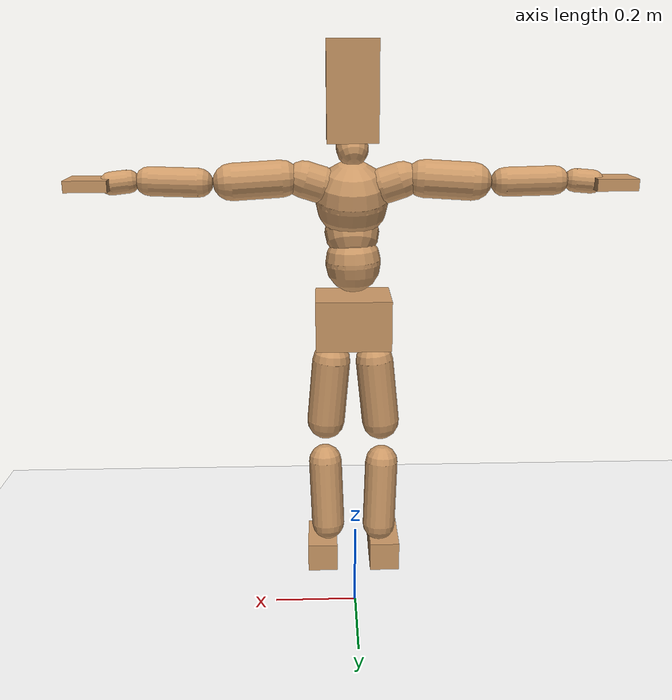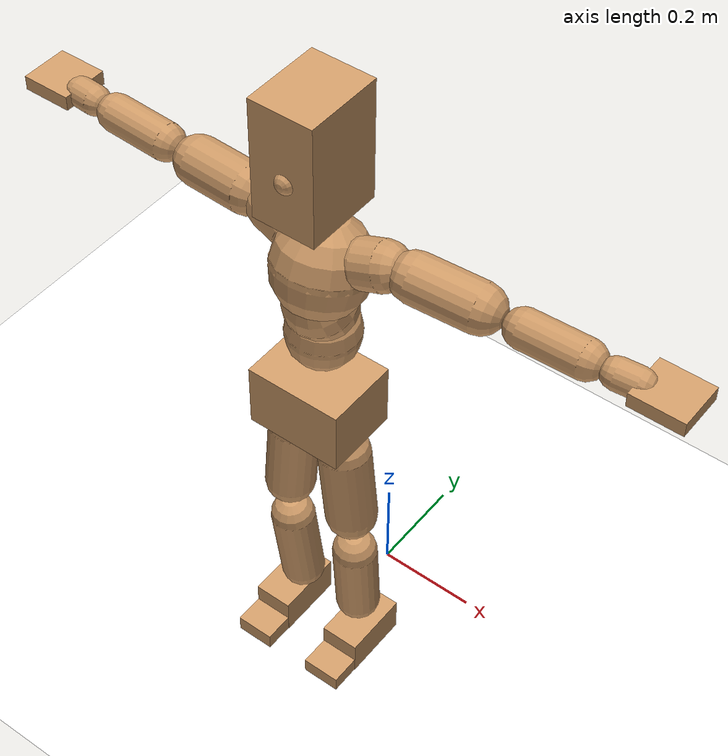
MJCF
<mujoco model="humanoid">
  <option integrator="implicitfast" />

  <visual>
    <global offwidth="1280" offheight="960" />
    <headlight active="1" ambient="0.34 0.34 0.34" diffuse="0.5 0.5 0.5" />
  </visual>

  <default>
    <joint damping="2" stiffness="2" armature="0.01" limited="true" solimplimit="0 .99 .01" />
    <geom condim="1" friction="0.7 0.005 0.0001" solimp=".99 .99 .003" solref="0.015 1" margin="0.001" rgba="0.8 0.6 .4 1" />
    <default class="smplcontact">
      <geom condim="3" friction="1. 0.005 0.0001" solref="0.015 1" solimp="0.98 0.98 0.001" priority="1" />
    </default>
    <default class="stiff_medium">
      <joint stiffness="10" />
    </default>
    <default class="stiff_medium_higher">
      <joint stiffness="50" />
    </default>
    <default class="stiff_high">
      <joint stiffness="100" />
    </default>
  </default>

  <asset>
    <texture type="skybox" builtin="gradient" rgb1="0.99 0.99 0.99" rgb2="0.608 0.828 0.892" width="100" />
    <texture builtin="flat" height="1278" mark="cross" markrgb="1 1 1" name="texgeom" random="0.01" rgb1="0.8 0.6 0.4" rgb2="0.8 0.6 0.4" type="cube" width="127" />
    <texture name="texplane" type="2d" builtin="checker" markrgb="1 1 1" rgb1="0.756 0.772 0.76" rgb2="0.6 0.6 0.6" width="100" height="100" />
    <material name="MatPlane" reflectance="0.5" texture="texplane" texrepeat="1 1" texuniform="true" />
    <material name="geom" texture="texgeom" texuniform="true" />
  </asset>

  <worldbody>
    <light name="tracking_light" pos="0 0 7" dir="0 0 -1" directional="true" cutoff="100" exponent="1" diffuse="1 1 1" specular="0.1 0.1 0.1" mode="trackcom" />
    <camera name="back" pos="0 3 2.4" xyaxes="-1 0 0 0 -1 2" mode="trackcom" />
    <camera name="side" pos="-3 0 2.4" xyaxes="0 -1 0 1 0 2" mode="trackcom" />
    <camera name="front_side" pos="-2.8 -2.8 0.8" xyaxes="0.5 -0.5 0 0.1 0.1 1" mode="trackcom" />
    <geom condim="3" name="floor" pos="0 0 0" rgba="1 1 1 1" size="100 100 .2" type="plane" material="MatPlane" />
    <body name="Pelvis" pos="-0.0018 -0.2233 0.69081" euler="90 0 0">
      <site name="Pelvis" size="0.01" />
      <freejoint name="Pelvis" />
      <geom type="box" pos="-0.0000 -0.0121 -0.0055" size="0.0948939 0.0640911 0.0736781" quat="1.0000 0.0000 0.0000 0.0000" density="3165.830099" name="Pelvis" />
      <body name="L_Hip" pos="0.0510283 -0.0671077 -0.0049927">
        <joint name="L_Hip_x" type="hinge" pos="0 0 0" axis="1 0 0" stiffness="10" range="-160.0 22.92" class="stiff_medium" damping="15" />
        <joint name="L_Hip_y" type="hinge" pos="0 0 0" axis="0 1 0" stiffness="10" range="-70.0 70.0" class="stiff_medium" damping="10" />
        <joint name="L_Hip_z" type="hinge" pos="0 0 0" axis="0 0 1" stiffness="10" range="-28.65 90.0" class="stiff_medium" damping="10" />
        <geom type="capsule" density="2040.816327" fromto="0.00506612 -0.0550665 -0.000660798 0.0201176 -0.220413 -0.00264319" size="0.0490996" name="L_Hip" />
        <body name="L_Knee" pos="0.0251838 -0.275479 -0.00330399">
          <joint name="L_Knee_x" type="hinge" pos="0 0 0" axis="1 0 0" range="-5.16 171.89" damping="8" />
          <joint name="L_Knee_y" type="hinge" pos="0 0 0" axis="0 1 0" range="-4.58 6.88" damping="8" />
          <joint name="L_Knee_z" type="hinge" pos="0 0 0" axis="0 0 1" range="-6.88 4.58" damping="8" />
          <geom type="capsule" density="1234.567901" fromto="-0.00198239 -0.0584439 -0.00638772 -0.008003 -0.233776 -0.0256977" size="0.0431916" name="L_Knee" />
          <body name="L_Ankle" pos="-0.0099854 -0.29222 -0.0320854">
            <joint name="L_Ankle_x" type="hinge" pos="0 0 0" axis="1 0 0" range="-45.84 45.84" class="stiff_medium" damping="6" />
            <joint name="L_Ankle_y" type="hinge" pos="0 0 0" axis="0 1 0" range="-74.48 22.92" class="stiff_medium" damping="3" />
            <joint name="L_Ankle_z" type="hinge" pos="0 0 0" axis="0 0 1" range="-4.58 4.58" class="stiff_medium" damping="6" />
            <geom type="box" pos="0.0171073 -0.0175479 0.0177681" size="0.0385611 0.0370442 0.0678612" quat="1.0000 0.0000 0.0000 0.0000" density="449.071558" name="L_Ankle" class="smplcontact" />
            <body name="L_Toe" pos="0.0193834 -0.0409695 0.0875925">
              <joint name="L_Toe_x" type="hinge" pos="0 0 0" axis="1 0 0" range="-91.67 22.92" />
              <joint name="L_Toe_y" type="hinge" pos="0 0 0" axis="0 1 0" range="-4.58 4.58" />
              <joint name="L_Toe_z" type="hinge" pos="0 0 0" axis="0 0 1" range="-4.58 4.58" />
              <geom type="box" pos="-0.00220266 0.00403821 0.0182087" size="0.0381619 0.0159673 0.039599" quat="1.0000 0.0000 0.0000 0.0000" density="423.206892" name="L_Toe" class="smplcontact" />
            </body>
          </body>
        </body>
      </body>
      <body name="R_Hip" pos="-0.0497067 -0.0664469 -0.00315715">
        <joint name="R_Hip_x" type="hinge" pos="0 0 0" axis="1 0 0" stiffness="10" range="-160.0 22.92" class="stiff_medium" damping="15" />
        <joint name="R_Hip_y" type="hinge" pos="0 0 0" axis="0 1 0" stiffness="10" range="-70.0 70.0" class="stiff_medium" damping="10" />
        <joint name="R_Hip_z" type="hinge" pos="0 0 0" axis="0 0 1" stiffness="10" range="-90.0 28.65" class="stiff_medium" damping="10" />
        <geom type="capsule" density="2040.816327" fromto="-0.0056535 -0.0561678 -0.0013216 -0.0224671 -0.224745 -0.00521296" size="0.048381" name="R_Hip" />
        <body name="R_Knee" pos="-0.0281206 -0.280913 -0.00653456">
          <joint name="R_Knee_x" type="hinge" pos="0 0 0" axis="1 0 0" range="-5.16 171.89" damping="8" />
          <joint name="R_Knee_y" type="hinge" pos="0 0 0" axis="0 1 0" range="-6.88 4.58" damping="8" />
          <joint name="R_Knee_z" type="hinge" pos="0 0 0" axis="0 0 1" range="-4.58 6.88" damping="8" />
          <geom type="capsule" density="1234.567901" fromto="0.0023495 -0.0585174 -0.00624087 0.00925117 -0.233996 -0.0248166" size="0.0431916" name="R_Knee" />
          <body name="R_Ankle" pos="0.0116007 -0.292513 -0.0310575">
            <joint name="R_Ankle_x" type="hinge" pos="0 0 0" axis="1 0 0" range="-45.84 45.84" class="stiff_medium" damping="6" />
            <joint name="R_Ankle_y" type="hinge" pos="0 0 0" axis="0 1 0" range="-22.92 74.48" class="stiff_medium" damping="3" />
            <joint name="R_Ankle_z" type="hinge" pos="0 0 0" axis="0 0 1" range="-4.58 4.58" class="stiff_medium" damping="6" />
            <geom type="box" pos="-0.0155655 -0.0127754 0.018796" size="0.0385611 0.0381619 0.0690587" quat="1.0000 0.0000 0.0000 0.0000" density="434.700981" name="R_Ankle" class="smplcontact" />
            <body name="R_Toe" pos="-0.0186492 -0.035316 0.0905294">
              <joint name="R_Toe_x" type="hinge" pos="0 0 0" axis="1 0 0" range="-91.67 22.92" />
              <joint name="R_Toe_y" type="hinge" pos="0 0 0" axis="0 1 0" range="-4.58 4.58" />
              <joint name="R_Toe_z" type="hinge" pos="0 0 0" axis="0 0 1" range="-4.58 4.58" />
              <geom type="box" pos="0.00308372 0.00330399 0.0166668" size="0.0382418 0.0172447 0.0393595" quat="1.0000 0.0000 0.0000 0.0000" density="407.384095" name="R_Toe" class="smplcontact" />
            </body>
          </body>
        </body>
      </body>
      <body name="Torso" pos="-0.00197269 0.0860093 -0.0210683">
        <joint name="Torso_x" type="hinge" pos="0 0 0" axis="1 0 0" range="-25.78 57.3" class="stiff_medium" damping="15" />
        <joint name="Torso_y" type="hinge" pos="0 0 0" axis="0 1 0" range="-57.3 57.3" class="stiff_high" damping="20" />
        <joint name="Torso_z" type="hinge" pos="0 0 0" axis="0 0 1" range="-34.38 34.38" class="stiff_high" damping="20" />
        <geom type="capsule" density="2040.816327" fromto="0.00197269 0.0479758 0.000394538 0.00236723 0.0586284 0.000473446" size="0.0682632" name="Torso" />
        <body name="Spine" pos="0.00433992 0.106683 0.000867984">
          <joint name="Spine_x" type="hinge" pos="0 0 0" axis="1 0 0" stiffness="10" range="-25.78 57.3" class="stiff_medium" damping="15" />
          <joint name="Spine_y" type="hinge" pos="0 0 0" axis="0 1 0" stiffness="10" range="-57.3 57.3" class="stiff_high" damping="8" />
          <joint name="Spine_z" type="hinge" pos="0 0 0" axis="0 0 1" stiffness="20" range="-34.38 34.38" class="stiff_high" damping="12" />
          <geom type="capsule" density="2040.816327" fromto="0.000552353 0.01878 0.00899547 0.000631261 0.0229621 0.0110471" size="0.0670205" name="Spine" />
          <body name="Chest" pos="0.00118361 0.0417421 0.0200425">
            <joint name="Chest_x" type="hinge" pos="0 0 0" axis="1 0 0" stiffness="10" range="-25.78 57.3" class="stiff_medium" damping="15" />
            <joint name="Chest_y" type="hinge" pos="0 0 0" axis="0 1 0" stiffness="10" range="-57.3 57.3" class="stiff_high" damping="8" />
            <joint name="Chest_z" type="hinge" pos="0 0 0" axis="0 0 1" stiffness="20" range="-34.38 34.38" class="stiff_high" damping="12" />
            <geom type="capsule" density="2040.816327" fromto="-0.000710169 0.053815 -0.013651 -0.000789076 0.06573 -0.0167284" size="0.0889464" name="Chest" />
            <body name="Neck" pos="-0.00220941 0.168783 -0.0338514">
              <joint name="Neck_x" type="hinge" pos="0 0 0" axis="1 0 0" range="-28.65 57.3" class="stiff_medium_higher" damping="10" />
              <joint name="Neck_y" type="hinge" pos="0 0 0" axis="0 1 0" range="-40.11 40.11" class="stiff_medium_higher" damping="10" />
              <joint name="Neck_z" type="hinge" pos="0 0 0" axis="0 0 1" range="-40.11 40.11" class="stiff_medium_higher" damping="10" />
              <geom type="capsule" density="1000" fromto="0.000789076 0.010258 0.00812748 0.00323521 0.041032 0.032431" size="0.0387032" name="Neck" />
              <body name="Head" pos="0.00493289 0.0616612 0.0486649">
                <joint name="Head_x" type="hinge" pos="0 0 0" axis="1 0 0" range="-28.65 57.3" class="stiff_medium_higher" damping="2" />
                <joint name="Head_y" type="hinge" pos="0 0 0" axis="0 1 0" range="-40.11 40.11" class="stiff_medium_higher" damping="2" />
                <joint name="Head_z" type="hinge" pos="0 0 0" axis="0 0 1" range="-40.11 40.11" class="stiff_medium_higher" damping="2" />
                <geom type="box" pos="-0.00398426 0.0831003 -0.0110042" size="0.0611088 0.116369 0.0766381" quat="1.0000 0.0000 0.0000 0.0000" density="1018.069894" name="Head" />
                <geom type="capsule" name="nose" size="0.0201679 0.010084" pos="0 0.0664044 0.0474317" quat="1 0 0 0" mass="0" contype="0" conaffinity="0" />
              </body>
            </body>
            <body name="L_Thorax" pos="0.0596075 0.0920589 -0.0257946">
              <joint name="L_Thorax_x" type="hinge" pos="0 0 0" axis="1 0 0" range="-10.89 4.58" class="stiff_medium_higher" damping="20" />
              <joint name="L_Thorax_y" type="hinge" pos="0 0 0" axis="0 1 0" range="-28.65 17.19" class="stiff_medium_higher" damping="20" />
              <joint name="L_Thorax_z" type="hinge" pos="0 0 0" axis="0 0 1" range="-31.51 40.11" class="stiff_medium_higher" damping="20" />
              <geom type="capsule" density="1000" fromto="0.0137672 0.00461429 -0.00136159 0.0550689 0.0184572 -0.00537073" size="0.0448411" name="L_Thorax" />
              <body name="L_Shoulder" pos="0.0688361 0.0230714 -0.00673232">
                <joint name="L_Shoulder_x" type="hinge" pos="0 0 0" axis="1 0 0" range="-97.4 97.4" class="stiff_medium" damping="6" />
                <joint name="L_Shoulder_y" type="hinge" pos="0 0 0" axis="0 1 0" range="-108.86 80.21" class="stiff_medium" damping="6" />
                <joint name="L_Shoulder_z" type="hinge" pos="0 0 0" axis="0 0 1" range="-97.4 85.94" class="stiff_medium" damping="6" />
                <geom type="capsule" density="1000" fromto="0.0392593 -0.00196675 -0.00416042 0.157113 -0.0077157 -0.0166417" size="0.0444968" name="L_Shoulder" />
                <body name="L_Elbow" pos="0.196372 -0.00968244 -0.0208021">
                  <joint name="L_Elbow_x" type="hinge" pos="0 0 0" axis="1 0 0" range="-17.19 4.58" damping="5" />
                  <joint name="L_Elbow_y" type="hinge" pos="0 0 0" axis="0 1 0" range="-180.0 17.19" damping="5" />
                  <joint name="L_Elbow_z" type="hinge" pos="0 0 0" axis="0 0 1" range="-100.84 4.58" damping="5" />
                  <geom type="capsule" density="1000" fromto="0.0376708 0.00136159 -0.000151288 0.150834 0.00544637 -0.000680797" size="0.0348573" name="L_Elbow" />
                  <body name="L_Wrist" pos="0.188505 0.00680797 -0.000907729">
                    <joint name="L_Wrist_x" type="hinge" pos="0 0 0" axis="1 0 0" range="-180.0 22.92" />
                    <joint name="L_Wrist_y" type="hinge" pos="0 0 0" axis="0 1 0" range="-17.19 17.19" />
                    <joint name="L_Wrist_z" type="hinge" pos="0 0 0" axis="0 0 1" range="-22.92 22.92" />
                    <geom type="capsule" density="1000" fromto="0.0127082 -0.00121031 -0.00226932 0.0508328 -0.00491687 -0.00907729" size="0.0273694" name="L_Wrist" class="smplcontact" />
                    <body name="L_Hand" pos="0.063541 -0.00620282 -0.011271">
                      <joint name="L_Hand_x" type="hinge" pos="0 0 0" axis="1 0 0" range="-17.19 17.19" />
                      <joint name="L_Hand_y" type="hinge" pos="0 0 0" axis="0 1 0" range="-51.57 51.57" />
                      <joint name="L_Hand_z" type="hinge" pos="0 0 0" axis="0 0 1" range="-91.67 91.67" />
                      <geom type="box" pos="0.0372925 0.000756441 -0.00438736" size="0.0503494 0.0135986 0.0463042" quat="1.0000 0.0000 0.0000 0.0000" density="400.552564" name="L_Hand" class="smplcontact" />
                    </body>
                  </body>
                </body>
              </body>
            </body>
            <body name="R_Thorax" pos="-0.0618769 0.0898652 -0.0291986">
              <joint name="R_Thorax_x" type="hinge" pos="0 0 0" axis="1 0 0" range="-10.89 4.58" class="stiff_medium_higher" damping="20" />
              <joint name="R_Thorax_y" type="hinge" pos="0 0 0" axis="0 1 0" range="-17.19 28.65" class="stiff_medium_higher" damping="20" />
              <joint name="R_Thorax_z" type="hinge" pos="0 0 0" axis="0 0 1" range="-40.11 31.51" class="stiff_medium_higher" damping="20" />
              <geom type="capsule" density="1000" fromto="-0.0145237 0.00491687 -0.00136159 -0.0580947 0.0196675 -0.00552202" size="0.0439804" name="R_Thorax" />
              <body name="R_Shoulder" pos="-0.0726183 0.02466 -0.00688361">
                <joint name="R_Shoulder_x" type="hinge" pos="0 0 0" axis="1 0 0" range="-97.4 97.4" class="stiff_medium" damping="6" />
                <joint name="R_Shoulder_y" type="hinge" pos="0 0 0" axis="0 1 0" range="-80.21 108.86" class="stiff_medium" damping="6" />
                <joint name="R_Shoulder_z" type="hinge" pos="0 0 0" axis="0 0 1" range="-85.94 97.4" class="stiff_medium" damping="6" />
                <geom type="capsule" density="1000" fromto="-0.0383516 -0.00204239 -0.0032527 -0.153558 -0.00809392 -0.0129351" size="0.0457017" name="R_Shoulder" />
                <body name="R_Elbow" pos="-0.191909 -0.0100607 -0.0161878">
                  <joint name="R_Elbow_x" type="hinge" pos="0 0 0" axis="1 0 0" range="-17.19 4.58" damping="5" />
                  <joint name="R_Elbow_y" type="hinge" pos="0 0 0" axis="0 1 0" range="-17.19 180.0" damping="5" />
                  <joint name="R_Elbow_z" type="hinge" pos="0 0 0" axis="0 0 1" range="-4.58 100.84" damping="5" />
                  <geom type="capsule" density="1000" fromto="-0.0386541 0.00121031 -0.000832085 -0.154465 0.00468993 -0.00332834" size="0.0351155" name="R_Elbow" />
                  <body name="R_Wrist" pos="-0.193119 0.00590024 -0.00423607">
                    <joint name="R_Wrist_x" type="hinge" pos="0 0 0" axis="1 0 0" range="-180.0 22.92" />
                    <joint name="R_Wrist_y" type="hinge" pos="0 0 0" axis="0 1 0" range="-17.19 17.19" />
                    <joint name="R_Wrist_z" type="hinge" pos="0 0 0" axis="0 0 1" range="-22.92 22.92" />
                    <geom type="capsule" density="1000" fromto="-0.0127839 -0.000907729 -0.00158853 -0.051211 -0.00370656 -0.00627846" size="0.0280579" name="R_Wrist" class="smplcontact" />
                    <body name="R_Hand" pos="-0.0639949 -0.00461429 -0.00779134">
                      <joint name="R_Hand_x" type="hinge" pos="0 0 0" axis="1 0 0" range="-17.19 17.19" />
                      <joint name="R_Hand_y" type="hinge" pos="0 0 0" axis="0 1 0" range="-51.57 51.57" />
                      <joint name="R_Hand_z" type="hinge" pos="0 0 0" axis="0 0 1" range="-91.67 91.67" />
                      <geom type="box" pos="-0.0349476 -0.000680797 -0.00597588" size="0.0489723 0.014115 0.0469928" quat="1.0000 0.0000 0.0000 0.0000" density="403.679611" name="R_Hand" class="smplcontact" />
                    </body>
                  </body>
                </body>
              </body>
            </body>
          </body>
        </body>
      </body>
    </body>
  </worldbody>
  <actuator>
    <general name="L_Hip_x" joint="L_Hip_x" biastype="affine" gainprm="287.33006409732246" biasprm="-215.3247604770444 -180 -2.0" ctrllimited="true" ctrlrange="-1 1" forcerange="-360 360" />
    <general name="L_Hip_y" joint="L_Hip_y" biastype="affine" gainprm="219.9114857512855" biasprm="0.0 -180 -2.0" ctrllimited="true" ctrlrange="-1 1" forcerange="-360 360" />
    <general name="L_Hip_z" joint="L_Hip_z" biastype="affine" gainprm="186.3749841742145" biasprm="96.3683546488669 -180 -2.0" ctrllimited="true" ctrlrange="-1 1" forcerange="-360 360" />
    <general name="L_Knee_x" joint="L_Knee_x" biastype="affine" gainprm="278.10948965903646" biasprm="261.8988715665131 -180 -2.0" ctrllimited="true" ctrlrange="-1 1" forcerange="-360 360" />
    <general name="L_Knee_y" joint="L_Knee_y" biastype="affine" gainprm="18.001325905069514" biasprm="3.612831551628262 -180 -2.0" ctrllimited="true" ctrlrange="-1 1" forcerange="-360 360" />
    <general name="L_Knee_z" joint="L_Knee_z" biastype="affine" gainprm="18.001325905069514" biasprm="-3.612831551628262 -180 -2.0" ctrllimited="true" ctrlrange="-1 1" forcerange="-360 360" />
    <general name="L_Ankle_x" joint="L_Ankle_x" biastype="affine" gainprm="72.00530362027807" biasprm="0.0 -90 -2.0" ctrllimited="true" ctrlrange="-1 1" forcerange="-180 180" />
    <general name="L_Ankle_y" joint="L_Ankle_y" biastype="affine" gainprm="76.49778111491148" biasprm="-40.49512930477244 -90 -2.0" ctrllimited="true" ctrlrange="-1 1" forcerange="-180 180" />
    <general name="L_Ankle_z" joint="L_Ankle_z" biastype="affine" gainprm="7.1942471767206255" biasprm="0.0 -90 -2.0" ctrllimited="true" ctrlrange="-1 1" forcerange="-180 180" />
    <general name="L_Toe_x" joint="L_Toe_x" biastype="affine" gainprm="71.99902043497087" biasprm="-43.19689898685965 -72 -0.8" ctrllimited="true" ctrlrange="-1 1" forcerange="-144 144" />
    <general name="L_Toe_y" joint="L_Toe_y" biastype="affine" gainprm="5.755397741376501" biasprm="0.0 -72 -0.8" ctrllimited="true" ctrlrange="-1 1" forcerange="-144 144" />
    <general name="L_Toe_z" joint="L_Toe_z" biastype="affine" gainprm="5.755397741376501" biasprm="0.0 -72 -0.8" ctrllimited="true" ctrlrange="-1 1" forcerange="-144 144" />
    <general name="R_Hip_x" joint="R_Hip_x" biastype="affine" gainprm="287.33006409732246" biasprm="-215.3247604770444 -180 -2.0" ctrllimited="true" ctrlrange="-1 1" forcerange="-360 360" />
    <general name="R_Hip_y" joint="R_Hip_y" biastype="affine" gainprm="219.9114857512855" biasprm="0.0 -180 -2.0" ctrllimited="true" ctrlrange="-1 1" forcerange="-360 360" />
    <general name="R_Hip_z" joint="R_Hip_z" biastype="affine" gainprm="186.3749841742145" biasprm="-96.3683546488669 -180 -2.0" ctrllimited="true" ctrlrange="-1 1" forcerange="-360 360" />
    <general name="R_Knee_x" joint="R_Knee_x" biastype="affine" gainprm="278.10948965903646" biasprm="261.8988715665131 -180 -2.0" ctrllimited="true" ctrlrange="-1 1" forcerange="-360 360" />
    <general name="R_Knee_y" joint="R_Knee_y" biastype="affine" gainprm="18.001325905069514" biasprm="-3.612831551628262 -180 -2.0" ctrllimited="true" ctrlrange="-1 1" forcerange="-360 360" />
    <general name="R_Knee_z" joint="R_Knee_z" biastype="affine" gainprm="18.001325905069514" biasprm="3.612831551628262 -180 -2.0" ctrllimited="true" ctrlrange="-1 1" forcerange="-360 360" />
    <general name="R_Ankle_x" joint="R_Ankle_x" biastype="affine" gainprm="72.00530362027807" biasprm="0.0 -90 -2.0" ctrllimited="true" ctrlrange="-1 1" forcerange="-180 180" />
    <general name="R_Ankle_y" joint="R_Ankle_y" biastype="affine" gainprm="76.49778111491148" biasprm="40.49512930477244 -90 -2.0" ctrllimited="true" ctrlrange="-1 1" forcerange="-180 180" />
    <general name="R_Ankle_z" joint="R_Ankle_z" biastype="affine" gainprm="7.1942471767206255" biasprm="0.0 -90 -2.0" ctrllimited="true" ctrlrange="-1 1" forcerange="-180 180" />
    <general name="R_Toe_x" joint="R_Toe_x" biastype="affine" gainprm="71.99902043497087" biasprm="-43.19689898685965 -72 -0.8" ctrllimited="true" ctrlrange="-1 1" forcerange="-144 144" />
    <general name="R_Toe_y" joint="R_Toe_y" biastype="affine" gainprm="5.755397741376501" biasprm="0.0 -72 -0.8" ctrllimited="true" ctrlrange="-1 1" forcerange="-144 144" />
    <general name="R_Toe_z" joint="R_Toe_z" biastype="affine" gainprm="5.755397741376501" biasprm="0.0 -72 -0.8" ctrllimited="true" ctrlrange="-1 1" forcerange="-144 144" />
    <general name="Torso_x" joint="Torso_x" biastype="affine" gainprm="174.00234510682668" biasprm="66.0153336274335 -240 -4.0" ctrllimited="true" ctrlrange="-1 1" forcerange="-360 360" />
    <general name="Torso_y" joint="Torso_y" biastype="affine" gainprm="240.0176787342602" biasprm="0.0 -240 -4.0" ctrllimited="true" ctrlrange="-1 1" forcerange="-360 360" />
    <general name="Torso_z" joint="Torso_z" biastype="affine" gainprm="144.01060724055614" biasprm="0.0 -240 -4.0" ctrllimited="true" ctrlrange="-1 1" forcerange="-360 360" />
    <general name="Spine_x" joint="Spine_x" biastype="affine" gainprm="174.00234510682668" biasprm="66.0153336274335 -240 -4.0" ctrllimited="true" ctrlrange="-1 1" forcerange="-360 360" />
    <general name="Spine_y" joint="Spine_y" biastype="affine" gainprm="240.0176787342602" biasprm="0.0 -240 -4.0" ctrllimited="true" ctrlrange="-1 1" forcerange="-360 360" />
    <general name="Spine_z" joint="Spine_z" biastype="affine" gainprm="144.01060724055614" biasprm="0.0 -240 -4.0" ctrllimited="true" ctrlrange="-1 1" forcerange="-360 360" />
    <general name="Chest_x" joint="Chest_x" biastype="affine" gainprm="174.00234510682668" biasprm="66.0153336274335 -240 -4.0" ctrllimited="true" ctrlrange="-1 1" forcerange="-360 360" />
    <general name="Chest_y" joint="Chest_y" biastype="affine" gainprm="240.0176787342602" biasprm="0.0 -240 -4.0" ctrllimited="true" ctrlrange="-1 1" forcerange="-360 360" />
    <general name="Chest_z" joint="Chest_z" biastype="affine" gainprm="144.01060724055614" biasprm="0.0 -240 -4.0" ctrllimited="true" ctrlrange="-1 1" forcerange="-360 360" />
    <general name="Neck_x" joint="Neck_x" biastype="affine" gainprm="27.00198885760427" biasprm="9.000662952534757 -36 -0.8" ctrllimited="true" ctrlrange="-1 1" forcerange="-72 72" />
    <general name="Neck_y" joint="Neck_y" biastype="affine" gainprm="25.20185626709732" biasprm="0.0 -36 -0.8" ctrllimited="true" ctrlrange="-1 1" forcerange="-72 72" />
    <general name="Neck_z" joint="Neck_z" biastype="affine" gainprm="25.20185626709732" biasprm="0.0 -36 -0.8" ctrllimited="true" ctrlrange="-1 1" forcerange="-72 72" />
    <general name="Head_x" joint="Head_x" biastype="affine" gainprm="18.001325905069514" biasprm="6.000441968356505 -24 -0.8" ctrllimited="true" ctrlrange="-1 1" forcerange="-48 48" />
    <general name="Head_y" joint="Head_y" biastype="affine" gainprm="16.801237511398213" biasprm="0.0 -24 -0.8" ctrllimited="true" ctrlrange="-1 1" forcerange="-48 48" />
    <general name="Head_z" joint="Head_z" biastype="affine" gainprm="16.801237511398213" biasprm="0.0 -24 -0.8" ctrllimited="true" ctrlrange="-1 1" forcerange="-48 48" />
    <general name="L_Thorax_x" joint="L_Thorax_x" biastype="affine" gainprm="16.200146117011364" biasprm="-6.6078165480505335 -120 -1.6" ctrllimited="true" ctrlrange="-1 1" forcerange="-240 240" />
    <general name="L_Thorax_y" joint="L_Thorax_y" biastype="affine" gainprm="48.00353574685204" biasprm="-12.00088393671301 -120 -1.6" ctrllimited="true" ctrlrange="-1 1" forcerange="-240 240" />
    <general name="L_Thorax_z" joint="L_Thorax_z" biastype="affine" gainprm="75.00028861670033" biasprm="9.00589894029074 -120 -1.6" ctrllimited="true" ctrlrange="-1 1" forcerange="-240 240" />
    <general name="L_Shoulder_x" joint="L_Shoulder_x" biastype="affine" gainprm="81.5976331892389" biasprm="0.0 -48 -1.6" ctrllimited="true" ctrlrange="-1 1" forcerange="-96 96" />
    <general name="L_Shoulder_y" joint="L_Shoulder_y" biastype="affine" gainprm="79.19745640189629" biasprm="-12.00088393671301 -48 -1.6" ctrllimited="true" ctrlrange="-1 1" forcerange="-96 96" />
    <general name="L_Shoulder_z" joint="L_Shoulder_z" biastype="affine" gainprm="76.79727961455369" biasprm="-4.800353574685214 -48 -1.6" ctrllimited="true" ctrlrange="-1 1" forcerange="-96 96" />
    <general name="L_Elbow_x" joint="L_Elbow_x" biastype="affine" gainprm="13.67849441372996" biasprm="-7.923096672353461 -72 -0.8" ctrllimited="true" ctrlrange="-1 1" forcerange="-144 144" />
    <general name="L_Elbow_y" joint="L_Elbow_y" biastype="affine" gainprm="123.89813107227425" biasprm="-102.29653998619085 -72 -0.8" ctrllimited="true" ctrlrange="-1 1" forcerange="-144 144" />
    <general name="L_Elbow_z" joint="L_Elbow_z" biastype="affine" gainprm="66.23733950828719" biasprm="-60.4819417669107 -72 -0.8" ctrllimited="true" ctrlrange="-1 1" forcerange="-144 144" />
    <general name="L_Wrist_x" joint="L_Wrist_x" biastype="affine" gainprm="21.24973270888136" biasprm="-16.449379134196157 -12 -0.8" ctrllimited="true" ctrlrange="-1 1" forcerange="-24 24" />
    <general name="L_Wrist_y" joint="L_Wrist_y" biastype="affine" gainprm="3.6002651810139037" biasprm="0.0 -12 -0.8" ctrllimited="true" ctrlrange="-1 1" forcerange="-24 24" />
    <general name="L_Wrist_z" joint="L_Wrist_z" biastype="affine" gainprm="4.800353574685205" biasprm="0.0 -12 -0.8" ctrllimited="true" ctrlrange="-1 1" forcerange="-24 24" />
    <general name="L_Hand_x" joint="L_Hand_x" biastype="affine" gainprm="3.6002651810139037" biasprm="0.0 -12 -0.8" ctrllimited="true" ctrlrange="-1 1" forcerange="-24 24" />
    <general name="L_Hand_y" joint="L_Hand_y" biastype="affine" gainprm="10.800795543041708" biasprm="0.0 -12 -0.8" ctrllimited="true" ctrlrange="-1 1" forcerange="-24 24" />
    <general name="L_Hand_z" joint="L_Hand_z" biastype="affine" gainprm="19.199319903638422" biasprm="0.0 -12 -0.8" ctrllimited="true" ctrlrange="-1 1" forcerange="-24 24" />
    <general name="R_Thorax_x" joint="R_Thorax_x" biastype="affine" gainprm="16.200146117011364" biasprm="-6.6078165480505335 -120 -1.6" ctrllimited="true" ctrlrange="-1 1" forcerange="-240 240" />
    <general name="R_Thorax_y" joint="R_Thorax_y" biastype="affine" gainprm="48.00353574685204" biasprm="12.000883936713002 -120 -1.6" ctrllimited="true" ctrlrange="-1 1" forcerange="-240 240" />
    <general name="R_Thorax_z" joint="R_Thorax_z" biastype="affine" gainprm="75.00028861670033" biasprm="-9.00589894029074 -120 -1.6" ctrllimited="true" ctrlrange="-1 1" forcerange="-240 240" />
    <general name="R_Shoulder_x" joint="R_Shoulder_x" biastype="affine" gainprm="81.5976331892389" biasprm="0.0 -48 -1.6" ctrllimited="true" ctrlrange="-1 1" forcerange="-96 96" />
    <general name="R_Shoulder_y" joint="R_Shoulder_y" biastype="affine" gainprm="79.19745640189629" biasprm="12.00088393671301 -48 -1.6" ctrllimited="true" ctrlrange="-1 1" forcerange="-96 96" />
    <general name="R_Shoulder_z" joint="R_Shoulder_z" biastype="affine" gainprm="76.79727961455369" biasprm="4.800353574685204 -48 -1.6" ctrllimited="true" ctrlrange="-1 1" forcerange="-96 96" />
    <general name="R_Elbow_x" joint="R_Elbow_x" biastype="affine" gainprm="13.67849441372996" biasprm="-7.923096672353461 -72 -0.8" ctrllimited="true" ctrlrange="-1 1" forcerange="-144 144" />
    <general name="R_Elbow_y" joint="R_Elbow_y" biastype="affine" gainprm="123.89813107227425" biasprm="102.29653998619085 -72 -0.8" ctrllimited="true" ctrlrange="-1 1" forcerange="-144 144" />
    <general name="R_Elbow_z" joint="R_Elbow_z" biastype="affine" gainprm="66.23733950828719" biasprm="60.481941766910694 -72 -0.8" ctrllimited="true" ctrlrange="-1 1" forcerange="-144 144" />
    <general name="R_Wrist_x" joint="R_Wrist_x" biastype="affine" gainprm="21.24973270888136" biasprm="-16.449379134196157 -12 -0.8" ctrllimited="true" ctrlrange="-1 1" forcerange="-24 24" />
    <general name="R_Wrist_y" joint="R_Wrist_y" biastype="affine" gainprm="3.6002651810139037" biasprm="0.0 -12 -0.8" ctrllimited="true" ctrlrange="-1 1" forcerange="-24 24" />
    <general name="R_Wrist_z" joint="R_Wrist_z" biastype="affine" gainprm="4.800353574685205" biasprm="0.0 -12 -0.8" ctrllimited="true" ctrlrange="-1 1" forcerange="-24 24" />
    <general name="R_Hand_x" joint="R_Hand_x" biastype="affine" gainprm="3.6002651810139037" biasprm="0.0 -12 -0.8" ctrllimited="true" ctrlrange="-1 1" forcerange="-24 24" />
    <general name="R_Hand_y" joint="R_Hand_y" biastype="affine" gainprm="10.800795543041708" biasprm="0.0 -12 -0.8" ctrllimited="true" ctrlrange="-1 1" forcerange="-24 24" />
    <general name="R_Hand_z" joint="R_Hand_z" biastype="affine" gainprm="19.199319903638422" biasprm="0.0 -12 -0.8" ctrllimited="true" ctrlrange="-1 1" forcerange="-24 24" />
  </actuator>
  <contact>
    <exclude body1="Torso" body2="Chest" />
    <exclude body1="Head" body2="Chest" />
    <exclude body1="R_Knee" body2="R_Toe" />
    <exclude body1="R_Knee" body2="L_Ankle" />
    <exclude body1="R_Knee" body2="L_Toe" />
    <exclude body1="L_Knee" body2="L_Toe" />
    <exclude body1="L_Knee" body2="R_Ankle" />
    <exclude body1="L_Knee" body2="R_Toe" />
    <exclude body1="L_Shoulder" body2="Chest" />
    <exclude body1="R_Shoulder" body2="Chest" />
  </contact>
  <sensor>
    <framelinvel name="sensor_Pelvis_framelinvel" objtype="xbody" objname="Pelvis" />
    <framelinvel name="sensor_L_Hip_framelinvel" objtype="xbody" objname="L_Hip" />
    <framelinvel name="sensor_L_Knee_framelinvel" objtype="xbody" objname="L_Knee" />
    <framelinvel name="sensor_L_Ankle_framelinvel" objtype="xbody" objname="L_Ankle" />
    <framelinvel name="sensor_L_Toe_framelinvel" objtype="xbody" objname="L_Toe" />
    <framelinvel name="sensor_R_Hip_framelinvel" objtype="xbody" objname="R_Hip" />
    <framelinvel name="sensor_R_Knee_framelinvel" objtype="xbody" objname="R_Knee" />
    <framelinvel name="sensor_R_Ankle_framelinvel" objtype="xbody" objname="R_Ankle" />
    <framelinvel name="sensor_R_Toe_framelinvel" objtype="xbody" objname="R_Toe" />
    <framelinvel name="sensor_Torso_framelinvel" objtype="xbody" objname="Torso" />
    <framelinvel name="sensor_Spine_framelinvel" objtype="xbody" objname="Spine" />
    <framelinvel name="sensor_Chest_framelinvel" objtype="xbody" objname="Chest" />
    <framelinvel name="sensor_Neck_framelinvel" objtype="xbody" objname="Neck" />
    <framelinvel name="sensor_Head_framelinvel" objtype="xbody" objname="Head" />
    <framelinvel name="sensor_L_Thorax_framelinvel" objtype="xbody" objname="L_Thorax" />
    <framelinvel name="sensor_L_Shoulder_framelinvel" objtype="xbody" objname="L_Shoulder" />
    <framelinvel name="sensor_L_Elbow_framelinvel" objtype="xbody" objname="L_Elbow" />
    <framelinvel name="sensor_L_Wrist_framelinvel" objtype="xbody" objname="L_Wrist" />
    <framelinvel name="sensor_L_Hand_framelinvel" objtype="xbody" objname="L_Hand" />
    <framelinvel name="sensor_R_Thorax_framelinvel" objtype="xbody" objname="R_Thorax" />
    <framelinvel name="sensor_R_Shoulder_framelinvel" objtype="xbody" objname="R_Shoulder" />
    <framelinvel name="sensor_R_Elbow_framelinvel" objtype="xbody" objname="R_Elbow" />
    <framelinvel name="sensor_R_Wrist_framelinvel" objtype="xbody" objname="R_Wrist" />
    <framelinvel name="sensor_R_Hand_framelinvel" objtype="xbody" objname="R_Hand" />
    <frameangvel name="sensor_Pelvis_frameangvel" objtype="xbody" objname="Pelvis" />
    <frameangvel name="sensor_L_Hip_frameangvel" objtype="xbody" objname="L_Hip" />
    <frameangvel name="sensor_L_Knee_frameangvel" objtype="xbody" objname="L_Knee" />
    <frameangvel name="sensor_L_Ankle_frameangvel" objtype="xbody" objname="L_Ankle" />
    <frameangvel name="sensor_L_Toe_frameangvel" objtype="xbody" objname="L_Toe" />
    <frameangvel name="sensor_R_Hip_frameangvel" objtype="xbody" objname="R_Hip" />
    <frameangvel name="sensor_R_Knee_frameangvel" objtype="xbody" objname="R_Knee" />
    <frameangvel name="sensor_R_Ankle_frameangvel" objtype="xbody" objname="R_Ankle" />
    <frameangvel name="sensor_R_Toe_frameangvel" objtype="xbody" objname="R_Toe" />
    <frameangvel name="sensor_Torso_frameangvel" objtype="xbody" objname="Torso" />
    <frameangvel name="sensor_Spine_frameangvel" objtype="xbody" objname="Spine" />
    <frameangvel name="sensor_Chest_frameangvel" objtype="xbody" objname="Chest" />
    <frameangvel name="sensor_Neck_frameangvel" objtype="xbody" objname="Neck" />
    <frameangvel name="sensor_Head_frameangvel" objtype="xbody" objname="Head" />
    <frameangvel name="sensor_L_Thorax_frameangvel" objtype="xbody" objname="L_Thorax" />
    <frameangvel name="sensor_L_Shoulder_frameangvel" objtype="xbody" objname="L_Shoulder" />
    <frameangvel name="sensor_L_Elbow_frameangvel" objtype="xbody" objname="L_Elbow" />
    <frameangvel name="sensor_L_Wrist_frameangvel" objtype="xbody" objname="L_Wrist" />
    <frameangvel name="sensor_L_Hand_frameangvel" objtype="xbody" objname="L_Hand" />
    <frameangvel name="sensor_R_Thorax_frameangvel" objtype="xbody" objname="R_Thorax" />
    <frameangvel name="sensor_R_Shoulder_frameangvel" objtype="xbody" objname="R_Shoulder" />
    <frameangvel name="sensor_R_Elbow_frameangvel" objtype="xbody" objname="R_Elbow" />
    <frameangvel name="sensor_R_Wrist_frameangvel" objtype="xbody" objname="R_Wrist" />
    <frameangvel name="sensor_R_Hand_frameangvel" objtype="xbody" objname="R_Hand" />
    <subtreelinvel name="Chest_subtreelinvel" body="Chest" />
    <gyro name="Pelvis_gyro" site="Pelvis" />
  </sensor>
</mujoco>
